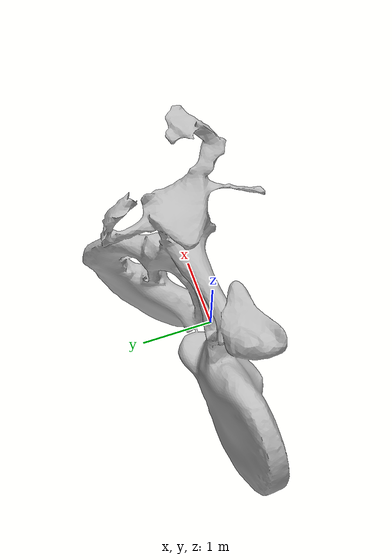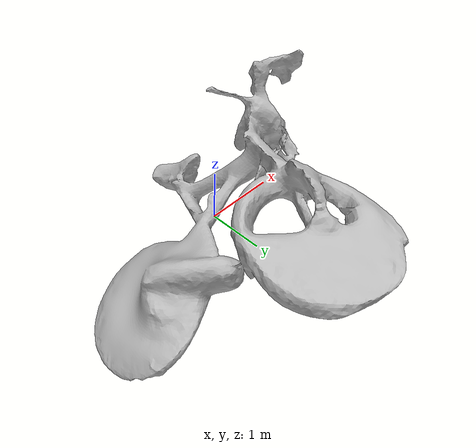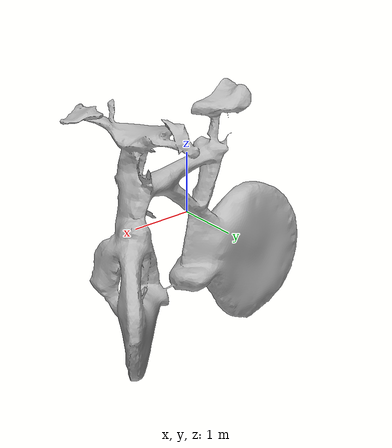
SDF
<?xml version='1.0'?>
<sdf version='1.7'>
  <model name='kare-cycle-3'>
    <model name='kare-cycle2'>
      <model name='kare-cycle2'>
        <model name='kare-cycle-2'>
          <link name='link'>
            <self_collide>0</self_collide>
            <enable_wind>0</enable_wind>
            <kinematic>0</kinematic>
            <pose>0 0 0 0 -0 0</pose>
            <gravity>1</gravity>
            <inertial>
              <mass>1</mass>
              <pose>0 0 0 0 -0 0</pose>
              <inertia>
                <ixx>1</ixx>
                <ixy>0</ixy>
                <ixz>0</ixz>
                <iyy>1</iyy>
                <iyz>0</iyz>
                <izz>1</izz>
              </inertia>
            </inertial>
            <visual name='visual'>
              <geometry>
                <mesh>
                  <scale>5 5 5</scale>
                  <uri>model://kare-cycle/meshes/kare-cycle.obj</uri>
                </mesh>
              </geometry>
              <material>
                <shader type='pixel'/>
              </material>
              <pose>0 0 0 0 -0 0</pose>
              <transparency>0</transparency>
              <cast_shadows>1</cast_shadows>
            </visual>
            <collision name='collision'>
              <laser_retro>0</laser_retro>
              <max_contacts>10</max_contacts>
              <pose>0 0 0 0 -0 0</pose>
              <geometry>
                <mesh>
                  <uri>/home/amadeus/model_editor_models/kare-cycle/meshes/kare-cycle.obj</uri>
                  <scale>5 5 5</scale>
                </mesh>
              </geometry>
              <surface>
                <friction>
                  <ode>
                    <mu>1</mu>
                    <mu2>1</mu2>
                    <fdir1>0 0 0</fdir1>
                    <slip1>0</slip1>
                    <slip2>0</slip2>
                  </ode>
                  <torsional>
                    <coefficient>1</coefficient>
                    <patch_radius>0</patch_radius>
                    <surface_radius>0</surface_radius>
                    <use_patch_radius>1</use_patch_radius>
                    <ode>
                      <slip>0</slip>
                    </ode>
                  </torsional>
                </friction>
                <bounce>
                  <restitution_coefficient>0</restitution_coefficient>
                  <threshold>1e+06</threshold>
                </bounce>
                <contact>
                  <collide_without_contact>0</collide_without_contact>
                  <collide_without_contact_bitmask>1</collide_without_contact_bitmask>
                  <collide_bitmask>1</collide_bitmask>
                  <ode>
                    <soft_cfm>0</soft_cfm>
                    <soft_erp>0.2</soft_erp>
                    <kp>1e+13</kp>
                    <kd>1</kd>
                    <max_vel>0.01</max_vel>
                    <min_depth>0</min_depth>
                  </ode>
                  <bullet>
                    <split_impulse>1</split_impulse>
                    <split_impulse_penetration_threshold>-0.01</split_impulse_penetration_threshold>
                    <soft_cfm>0</soft_cfm>
                    <soft_erp>0.2</soft_erp>
                    <kp>1e+13</kp>
                    <kd>1</kd>
                  </bullet>
                </contact>
              </surface>
            </collision>
          </link>
          <static>1</static>
          <allow_auto_disable>1</allow_auto_disable>
          <pose>4.5e-05 3e-06 6e-06 1.56443 -0.051805 1.69313</pose>
        </model>
        <static>0</static>
        <allow_auto_disable>1</allow_auto_disable>
        <pose>9e-06 4e-06 -1e-06 0 -0 0</pose>
      </model>
      <static>0</static>
      <allow_auto_disable>1</allow_auto_disable>
      <pose>-2.6e-05 3e-06 -2e-06 0 -0 0</pose>
    </model>
    <static>0</static>
    <allow_auto_disable>1</allow_auto_disable>
  </model>
</sdf>
